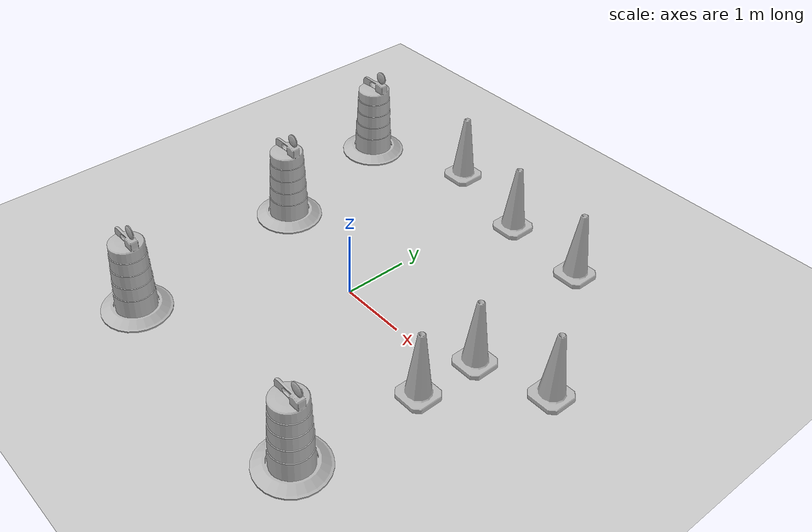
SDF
<sdf version="1.7">
 <world name="default">
  <light name="sun" type="directional">
   <pose>0 0 10 0 -0 0</pose>
   <diffuse>0.8 0.8 0.8 1</diffuse>
   <specular>0.2 0.2 0.2 1</specular>
   <attenuation>
    <range>1000</range>
    <constant>0.9</constant>
    <linear>0.01</linear>
    <quadratic>0.001</quadratic>
   </attenuation>
   <direction>-0.5 0.1 -0.9</direction>
   <spot><inner_angle>0</inner_angle><outer_angle>0</outer_angle><falloff>0</falloff></spot>
  </light>
  <model name="ground_plane">
   <static>1</static>
   <link name="link">
    <collision name="collision">
     <geometry><plane><normal>0 0 1</normal><size>100 100</size></plane></geometry>
     <surface>
      <contact><collide_bitmask>65535</collide_bitmask></contact>
      <friction><ode><mu>100</mu><mu2>50</mu2></ode></friction>
     </surface>
    </collision>
    <visual name="visual">
     <cast_shadows>0</cast_shadows>
     <geometry><plane><normal>0 0 1</normal><size>100 100</size></plane></geometry>
     <material>
      <script><uri>file://media/materials/scripts/gazebo.material</uri><name>Gazebo/Grey</name></script>
     </material>
    </visual>
   </link>
  </model>
  <gravity>0 0 -9.8</gravity>
  <magnetic_field>6e-06 2.3e-05 -4.2e-05</magnetic_field>
  <atmosphere type="adiabatic"/>
  <physics type="ode">
   <max_step_size>0.001</max_step_size>
   <real_time_factor>1</real_time_factor>
   <real_time_update_rate>1000</real_time_update_rate>
  </physics>
  <scene><ambient>0.4 0.4 0.4 1</ambient><background>0.7 0.7 0.7 1</background><shadows>1</shadows></scene>
  <spherical_coordinates>
   <surface_model>EARTH_WGS84</surface_model>
   <latitude_deg>0</latitude_deg>
   <longitude_deg>0</longitude_deg>
   <elevation>0</elevation>
   <heading_deg>0</heading_deg>
  </spherical_coordinates>
  <model name="Construction Barrel">
   <link name="link">
    <inertial>
     <pose>0 0 0.4 0 -0 0</pose>
     <mass>500</mass>
     <inertia><ixx>51.2096</ixx><iyy>51.2096</iyy><izz>25</izz><ixy>0</ixy><ixz>0</ixz><iyz>0</iyz></inertia>
    </inertial>
    <collision name="collision">
     <geometry><mesh><uri>model://construction_barrel/meshes/construction_barrel.dae</uri></mesh></geometry>
    </collision>
    <visual name="visual">
     <geometry><mesh><uri>model://construction_barrel/meshes/construction_barrel.dae</uri></mesh></geometry>
    </visual>
   </link>
   <pose>-2.0194 0.436821 0 0 -0 -1.9e-05</pose>
  </model>
  <model name="Construction Barrel_0">
   <link name="link">
    <inertial>
     <pose>0 0 0.4 0 -0 0</pose>
     <mass>500</mass>
     <inertia><ixx>51.2096</ixx><iyy>51.2096</iyy><izz>25</izz><ixy>0</ixy><ixz>0</ixz><iyz>0</iyz></inertia>
    </inertial>
    <collision name="collision">
     <geometry><mesh><uri>model://construction_barrel/meshes/construction_barrel.dae</uri></mesh></geometry>
    </collision>
    <visual name="visual">
     <geometry><mesh><uri>model://construction_barrel/meshes/construction_barrel.dae</uri></mesh></geometry>
    </visual>
   </link>
   <pose>-2.58327 2.65056 -5e-06 -9e-06 -9e-06 -1.8e-05</pose>
  </model>
  <model name="Construction Cone">
   <link name="link">
    <collision name="collision">
     <geometry>
      <mesh><scale>10 10 10</scale><uri>model://construction_cone/meshes/construction_cone.dae</uri></mesh>
     </geometry>
    </collision>
    <visual name="visual">
     <geometry>
      <mesh><scale>10 10 10</scale><uri>model://construction_cone/meshes/construction_cone.dae</uri></mesh>
     </geometry>
    </visual>
    <inertial>
     <inertia><ixx>1</ixx><ixy>0</ixy><ixz>0</ixz><iyy>1</iyy><iyz>0</iyz><izz>1</izz></inertia>
     <mass>1</mass>
    </inertial>
   </link>
   <pose>2.1343 0.365986 -1e-06 1e-06 -2e-06 -0</pose>
  </model>
  <model name="Construction Cone_0">
   <link name="link">
    <collision name="collision">
     <geometry>
      <mesh><scale>10 10 10</scale><uri>model://construction_cone/meshes/construction_cone.dae</uri></mesh>
     </geometry>
    </collision>
    <visual name="visual">
     <geometry>
      <mesh><scale>10 10 10</scale><uri>model://construction_cone/meshes/construction_cone.dae</uri></mesh>
     </geometry>
    </visual>
    <inertial>
     <inertia><ixx>1</ixx><ixy>0</ixy><ixz>0</ixz><iyy>1</iyy><iyz>0</iyz><izz>1</izz></inertia>
     <mass>1</mass>
    </inertial>
   </link>
   <pose>-1.03084 3.27312 0 -0 -0 -0</pose>
  </model>
  <model name="Construction Cone_1">
   <link name="link">
    <collision name="collision">
     <geometry>
      <mesh><scale>10 10 10</scale><uri>model://construction_cone/meshes/construction_cone.dae</uri></mesh>
     </geometry>
    </collision>
    <visual name="visual">
     <geometry>
      <mesh><scale>10 10 10</scale><uri>model://construction_cone/meshes/construction_cone.dae</uri></mesh>
     </geometry>
    </visual>
    <inertial>
     <inertia><ixx>1</ixx><ixy>0</ixy><ixz>0</ixz><iyy>1</iyy><iyz>0</iyz><izz>1</izz></inertia>
     <mass>1</mass>
    </inertial>
   </link>
   <pose>0.453605 2.88206 -0 0 -1e-06 0</pose>
  </model>
  <model name="Construction Cone_2">
   <link name="link">
    <collision name="collision">
     <geometry>
      <mesh><scale>10 10 10</scale><uri>model://construction_cone/meshes/construction_cone.dae</uri></mesh>
     </geometry>
    </collision>
    <visual name="visual">
     <geometry>
      <mesh><scale>10 10 10</scale><uri>model://construction_cone/meshes/construction_cone.dae</uri></mesh>
     </geometry>
    </visual>
    <inertial>
     <inertia><ixx>1</ixx><ixy>0</ixy><ixz>0</ixz><iyy>1</iyy><iyz>0</iyz><izz>1</izz></inertia>
     <mass>1</mass>
    </inertial>
   </link>
   <pose>2.08248 -0.594919 -0 0 -1e-06 0</pose>
  </model>
  <model name="Construction Cone_3">
   <link name="link">
    <collision name="collision">
     <geometry>
      <mesh><scale>10 10 10</scale><uri>model://construction_cone/meshes/construction_cone.dae</uri></mesh>
     </geometry>
    </collision>
    <visual name="visual">
     <geometry>
      <mesh><scale>10 10 10</scale><uri>model://construction_cone/meshes/construction_cone.dae</uri></mesh>
     </geometry>
    </visual>
    <inertial>
     <inertia><ixx>1</ixx><ixy>0</ixy><ixz>0</ixz><iyy>1</iyy><iyz>0</iyz><izz>1</izz></inertia>
     <mass>1</mass>
    </inertial>
   </link>
   <pose>3.16866 0.697402 -0 0 -1e-06 0</pose>
  </model>
  <model name="Construction Cone_4">
   <link name="link">
    <collision name="collision">
     <geometry>
      <mesh><scale>10 10 10</scale><uri>model://construction_cone/meshes/construction_cone.dae</uri></mesh>
     </geometry>
    </collision>
    <visual name="visual">
     <geometry>
      <mesh><scale>10 10 10</scale><uri>model://construction_cone/meshes/construction_cone.dae</uri></mesh>
     </geometry>
    </visual>
    <inertial>
     <inertia><ixx>1</ixx><ixy>0</ixy><ixz>0</ixz><iyy>1</iyy><iyz>0</iyz><izz>1</izz></inertia>
     <mass>1</mass>
    </inertial>
   </link>
   <pose>1.79622 2.75196 -0 0 -1e-06 0</pose>
  </model>
  <model name="Construction Barrel_1">
   <link name="link">
    <inertial>
     <pose>0 0 0.4 0 -0 0</pose>
     <mass>500</mass>
     <inertia><ixx>51.2096</ixx><iyy>51.2096</iyy><izz>25</izz><ixy>0</ixy><ixz>0</ixz><iyz>0</iyz></inertia>
    </inertial>
    <collision name="collision">
     <geometry><mesh><uri>model://construction_barrel/meshes/construction_barrel.dae</uri></mesh></geometry>
    </collision>
    <visual name="visual">
     <geometry><mesh><uri>model://construction_barrel/meshes/construction_barrel.dae</uri></mesh></geometry>
    </visual>
   </link>
   <pose>-1.63589 -2.51149 -2e-06 -7e-06 -4e-06 -7e-06</pose>
  </model>
  <model name="Construction Barrel_2">
   <link name="link">
    <inertial>
     <pose>0 0 0.4 0 -0 0</pose>
     <mass>500</mass>
     <inertia><ixx>51.2096</ixx><iyy>51.2096</iyy><izz>25</izz><ixy>0</ixy><ixz>0</ixz><iyz>0</iyz></inertia>
    </inertial>
    <collision name="collision">
     <geometry><mesh><uri>model://construction_barrel/meshes/construction_barrel.dae</uri></mesh></geometry>
    </collision>
    <visual name="visual">
     <geometry><mesh><uri>model://construction_barrel/meshes/construction_barrel.dae</uri></mesh></geometry>
    </visual>
   </link>
   <pose>1.94104 -2.49289 -1e-06 2e-06 -1e-06 -4e-06</pose>
  </model>
 </world>
</sdf>
